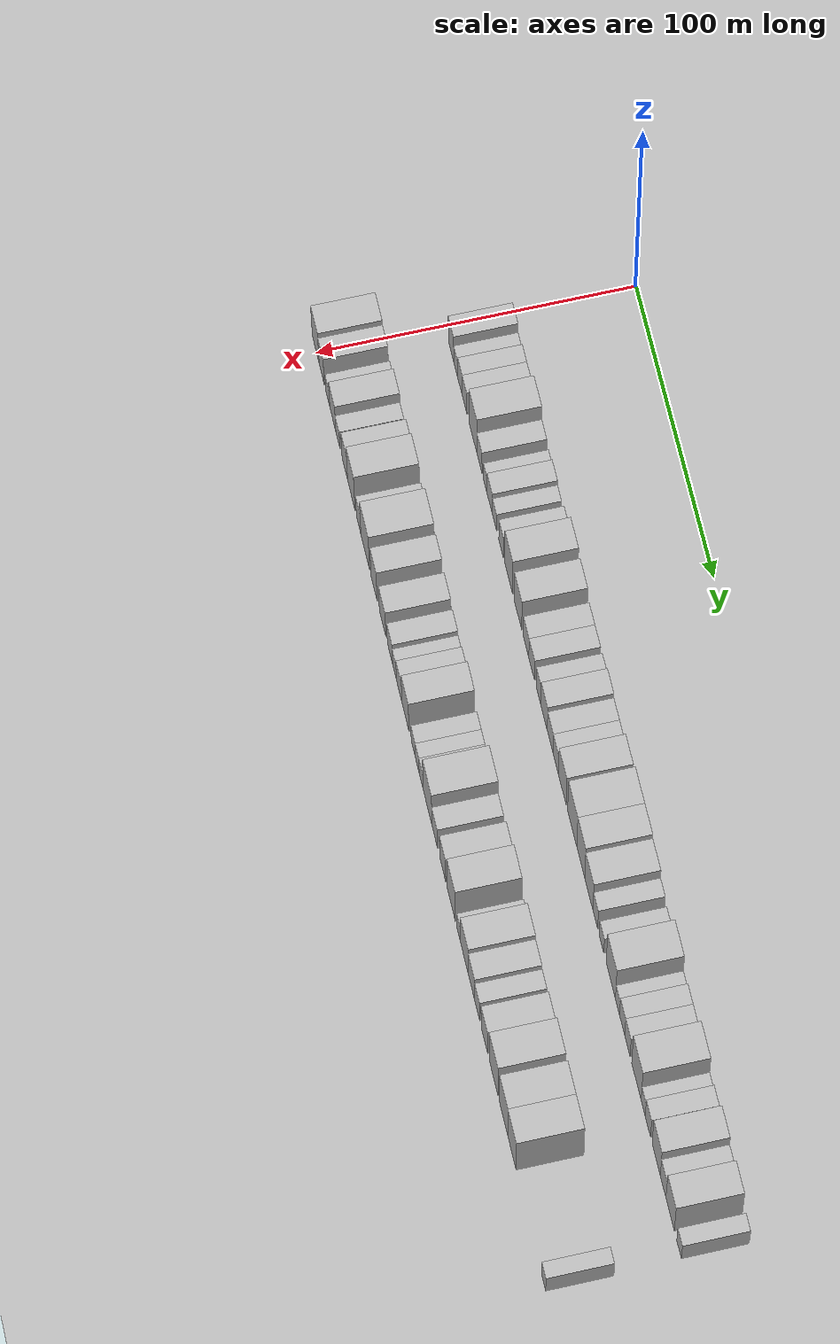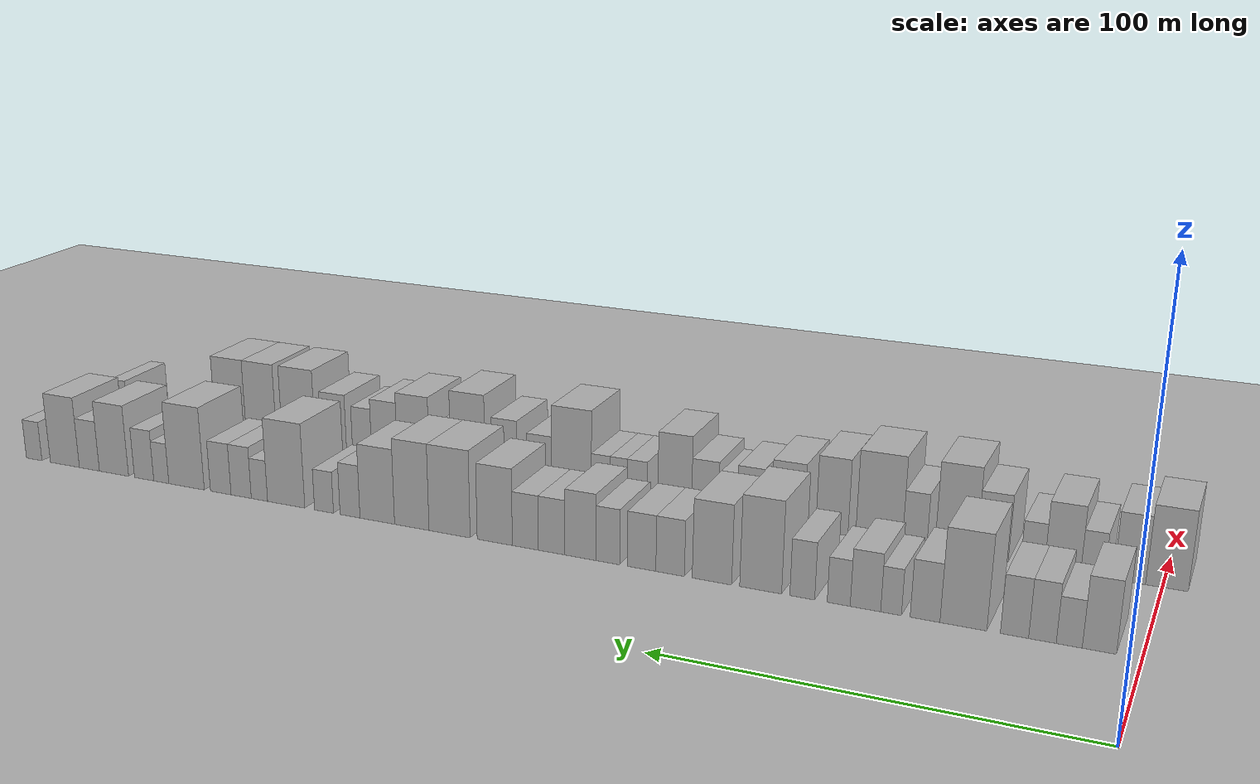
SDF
<sdf version="1.6">
 <world name="default">
  <include><name>ground_plane_1</name><uri>model://HANNAS_ground_plane</uri></include>
  <include>
   <name>ground_plane_2</name>
   <uri>model://HANNAS_ground_plane</uri>
   <pose>100 0 0  0 0 0</pose>
  </include>
  <model name="building_34">
   <static>1</static>
   <pose>50.0000 9.1386 0 0.000000 0.000000 0.000000</pose>
   <link name="link">
    <pose>0 0 9.00 0 0 0</pose>
    <collision name="collision"><geometry><box><size>20.0000 7.2633 18.0000</size></box></geometry></collision>
    <visual name="visual">
     <cast_shadows>0</cast_shadows>
     <geometry><box><size>20.0000 7.2633 18.0000</size></box></geometry>
     <material>
      <script>
       <uri>model://HANNAS_wall/materials/scripts</uri>
       <uri>model://HANNAS_wall/materials/textures</uri>
       <name>vrc/HANNAS_wall</name>
      </script>
     </material>
    </visual>
   </link>
  </model>
  <model name="building_35">
   <static>1</static>
   <pose>50.0000 15.5627 0 0.000000 0.000000 0.000000</pose>
   <link name="link">
    <pose>0 0 6.00 0 0 0</pose>
    <collision name="collision"><geometry><box><size>20.0000 5.5849 12.0000</size></box></geometry></collision>
    <visual name="visual">
     <cast_shadows>0</cast_shadows>
     <geometry><box><size>20.0000 5.5849 12.0000</size></box></geometry>
     <material>
      <script>
       <uri>model://HANNAS_wall/materials/scripts</uri>
       <uri>model://HANNAS_wall/materials/textures</uri>
       <name>vrc/HANNAS_wall</name>
      </script>
     </material>
    </visual>
   </link>
  </model>
  <model name="building_36">
   <static>1</static>
   <pose>50.0000 21.3634 0 0.000000 0.000000 0.000000</pose>
   <link name="link">
    <pose>0 0 7.50 0 0 0</pose>
    <collision name="collision"><geometry><box><size>20.0000 6.0165 15.0000</size></box></geometry></collision>
    <visual name="visual">
     <cast_shadows>0</cast_shadows>
     <geometry><box><size>20.0000 6.0165 15.0000</size></box></geometry>
     <material>
      <script>
       <uri>model://HANNAS_wall/materials/scripts</uri>
       <uri>model://HANNAS_wall/materials/textures</uri>
       <name>vrc/HANNAS_wall</name>
      </script>
     </material>
    </visual>
   </link>
  </model>
  <model name="building_37">
   <static>1</static>
   <pose>50.0000 27.4844 0 0.000000 0.000000 0.000000</pose>
   <link name="link">
    <pose>0 0 7.50 0 0 0</pose>
    <collision name="collision"><geometry><box><size>20.0000 6.2254 15.0000</size></box></geometry></collision>
    <visual name="visual">
     <cast_shadows>0</cast_shadows>
     <geometry><box><size>20.0000 6.2254 15.0000</size></box></geometry>
     <material>
      <script>
       <uri>model://HANNAS_wall/materials/scripts</uri>
       <uri>model://HANNAS_wall/materials/textures</uri>
       <name>vrc/HANNAS_wall</name>
      </script>
     </material>
    </visual>
   </link>
  </model>
  <model name="building_38">
   <static>1</static>
   <pose>50.0000 38.8776 0 0.000000 0.000000 0.000000</pose>
   <link name="link">
    <pose>0 0 12.00 0 0 0</pose>
    <collision name="collision"><geometry><box><size>20.0000 10.5609 24.0000</size></box></geometry></collision>
    <visual name="visual">
     <cast_shadows>0</cast_shadows>
     <geometry><box><size>20.0000 10.5609 24.0000</size></box></geometry>
     <material>
      <script>
       <uri>model://HANNAS_wall/materials/scripts</uri>
       <uri>model://HANNAS_wall/materials/textures</uri>
       <name>vrc/HANNAS_wall</name>
      </script>
     </material>
    </visual>
   </link>
  </model>
  <model name="building_39">
   <static>1</static>
   <pose>50.0000 47.5717 0 0.000000 0.000000 0.000000</pose>
   <link name="link">
    <pose>0 0 7.50 0 0 0</pose>
    <collision name="collision"><geometry><box><size>20.0000 6.8272 15.0000</size></box></geometry></collision>
    <visual name="visual">
     <cast_shadows>0</cast_shadows>
     <geometry><box><size>20.0000 6.8272 15.0000</size></box></geometry>
     <material>
      <script>
       <uri>model://HANNAS_wall/materials/scripts</uri>
       <uri>model://HANNAS_wall/materials/textures</uri>
       <name>vrc/HANNAS_wall</name>
      </script>
     </material>
    </visual>
   </link>
  </model>
  <model name="building_40">
   <static>1</static>
   <pose>50.0000 55.4066 0 0.000000 0.000000 0.000000</pose>
   <link name="link">
    <pose>0 0 6.00 0 0 0</pose>
    <collision name="collision"><geometry><box><size>20.0000 4.8426 12.0000</size></box></geometry></collision>
    <visual name="visual">
     <cast_shadows>0</cast_shadows>
     <geometry><box><size>20.0000 4.8426 12.0000</size></box></geometry>
     <material>
      <script>
       <uri>model://HANNAS_wall/materials/scripts</uri>
       <uri>model://HANNAS_wall/materials/textures</uri>
       <name>vrc/HANNAS_wall</name>
      </script>
     </material>
    </visual>
   </link>
  </model>
  <model name="building_41">
   <static>1</static>
   <pose>50.0000 61.4080 0 0.000000 0.000000 0.000000</pose>
   <link name="link">
    <pose>0 0 7.50 0 0 0</pose>
    <collision name="collision"><geometry><box><size>20.0000 7.1603 15.0000</size></box></geometry></collision>
    <visual name="visual">
     <cast_shadows>0</cast_shadows>
     <geometry><box><size>20.0000 7.1603 15.0000</size></box></geometry>
     <material>
      <script>
       <uri>model://HANNAS_wall/materials/scripts</uri>
       <uri>model://HANNAS_wall/materials/textures</uri>
       <name>vrc/HANNAS_wall</name>
      </script>
     </material>
    </visual>
   </link>
  </model>
  <model name="building_42">
   <static>1</static>
   <pose>50.0000 67.7312 0 0.000000 0.000000 0.000000</pose>
   <link name="link">
    <pose>0 0 6.00 0 0 0</pose>
    <collision name="collision"><geometry><box><size>20.0000 5.4860 12.0000</size></box></geometry></collision>
    <visual name="visual">
     <cast_shadows>0</cast_shadows>
     <geometry><box><size>20.0000 5.4860 12.0000</size></box></geometry>
     <material>
      <script>
       <uri>model://HANNAS_wall/materials/scripts</uri>
       <uri>model://HANNAS_wall/materials/textures</uri>
       <name>vrc/HANNAS_wall</name>
      </script>
     </material>
    </visual>
   </link>
  </model>
  <model name="building_43">
   <static>1</static>
   <pose>50.0000 76.4869 0 0.000000 0.000000 0.000000</pose>
   <link name="link">
    <pose>0 0 7.50 0 0 0</pose>
    <collision name="collision"><geometry><box><size>20.0000 6.0255 15.0000</size></box></geometry></collision>
    <visual name="visual">
     <cast_shadows>0</cast_shadows>
     <geometry><box><size>20.0000 6.0255 15.0000</size></box></geometry>
     <material>
      <script>
       <uri>model://HANNAS_wall/materials/scripts</uri>
       <uri>model://HANNAS_wall/materials/textures</uri>
       <name>vrc/HANNAS_wall</name>
      </script>
     </material>
    </visual>
   </link>
  </model>
  <model name="building_44">
   <static>1</static>
   <pose>50.0000 86.6789 0 0.000000 0.000000 0.000000</pose>
   <link name="link">
    <pose>0 0 12.00 0 0 0</pose>
    <collision name="collision"><geometry><box><size>20.0000 10.3585 24.0000</size></box></geometry></collision>
    <visual name="visual">
     <cast_shadows>0</cast_shadows>
     <geometry><box><size>20.0000 10.3585 24.0000</size></box></geometry>
     <material>
      <script>
       <uri>model://HANNAS_wall/materials/scripts</uri>
       <uri>model://HANNAS_wall/materials/textures</uri>
       <name>vrc/HANNAS_wall</name>
      </script>
     </material>
    </visual>
   </link>
  </model>
  <model name="building_45">
   <static>1</static>
   <pose>50.0000 98.8367 0 0.000000 0.000000 0.000000</pose>
   <link name="link">
    <pose>0 0 10.50 0 0 0</pose>
    <collision name="collision"><geometry><box><size>20.0000 9.9571 21.0000</size></box></geometry></collision>
    <visual name="visual">
     <cast_shadows>0</cast_shadows>
     <geometry><box><size>20.0000 9.9571 21.0000</size></box></geometry>
     <material>
      <script>
       <uri>model://HANNAS_wall/materials/scripts</uri>
       <uri>model://HANNAS_wall/materials/textures</uri>
       <name>vrc/HANNAS_wall</name>
      </script>
     </material>
    </visual>
   </link>
  </model>
  <model name="building_46">
   <static>1</static>
   <pose>50.0000 109.4958 0 0.000000 0.000000 0.000000</pose>
   <link name="link">
    <pose>0 0 7.50 0 0 0</pose>
    <collision name="collision"><geometry><box><size>20.0000 7.3610 15.0000</size></box></geometry></collision>
    <visual name="visual">
     <cast_shadows>0</cast_shadows>
     <geometry><box><size>20.0000 7.3610 15.0000</size></box></geometry>
     <material>
      <script>
       <uri>model://HANNAS_wall/materials/scripts</uri>
       <uri>model://HANNAS_wall/materials/textures</uri>
       <name>vrc/HANNAS_wall</name>
      </script>
     </material>
    </visual>
   </link>
  </model>
  <model name="building_47">
   <static>1</static>
   <pose>50.0000 116.9033 0 0.000000 0.000000 0.000000</pose>
   <link name="link">
    <pose>0 0 7.50 0 0 0</pose>
    <collision name="collision"><geometry><box><size>20.0000 7.4541 15.0000</size></box></geometry></collision>
    <visual name="visual">
     <cast_shadows>0</cast_shadows>
     <geometry><box><size>20.0000 7.4541 15.0000</size></box></geometry>
     <material>
      <script>
       <uri>model://HANNAS_wall/materials/scripts</uri>
       <uri>model://HANNAS_wall/materials/textures</uri>
       <name>vrc/HANNAS_wall</name>
      </script>
     </material>
    </visual>
   </link>
  </model>
  <model name="building_48">
   <static>1</static>
   <pose>50.0000 125.7696 0 0.000000 0.000000 0.000000</pose>
   <link name="link">
    <pose>0 0 7.50 0 0 0</pose>
    <collision name="collision"><geometry><box><size>20.0000 6.2784 15.0000</size></box></geometry></collision>
    <visual name="visual">
     <cast_shadows>0</cast_shadows>
     <geometry><box><size>20.0000 6.2784 15.0000</size></box></geometry>
     <material>
      <script>
       <uri>model://HANNAS_wall/materials/scripts</uri>
       <uri>model://HANNAS_wall/materials/textures</uri>
       <name>vrc/HANNAS_wall</name>
      </script>
     </material>
    </visual>
   </link>
  </model>
  <model name="building_49">
   <static>1</static>
   <pose>50.0000 133.0935 0 0.000000 0.000000 0.000000</pose>
   <link name="link">
    <pose>0 0 9.00 0 0 0</pose>
    <collision name="collision"><geometry><box><size>20.0000 8.3695 18.0000</size></box></geometry></collision>
    <visual name="visual">
     <cast_shadows>0</cast_shadows>
     <geometry><box><size>20.0000 8.3695 18.0000</size></box></geometry>
     <material>
      <script>
       <uri>model://HANNAS_wall/materials/scripts</uri>
       <uri>model://HANNAS_wall/materials/textures</uri>
       <name>vrc/HANNAS_wall</name>
      </script>
     </material>
    </visual>
   </link>
  </model>
  <model name="building_50">
   <static>1</static>
   <pose>50.0000 140.9272 0 0.000000 0.000000 0.000000</pose>
   <link name="link">
    <pose>0 0 7.50 0 0 0</pose>
    <collision name="collision"><geometry><box><size>20.0000 7.2979 15.0000</size></box></geometry></collision>
    <visual name="visual">
     <cast_shadows>0</cast_shadows>
     <geometry><box><size>20.0000 7.2979 15.0000</size></box></geometry>
     <material>
      <script>
       <uri>model://HANNAS_wall/materials/scripts</uri>
       <uri>model://HANNAS_wall/materials/textures</uri>
       <name>vrc/HANNAS_wall</name>
      </script>
     </material>
    </visual>
   </link>
  </model>
  <model name="building_51">
   <static>1</static>
   <pose>50.0000 148.1332 0 0.000000 0.000000 0.000000</pose>
   <link name="link">
    <pose>0 0 7.50 0 0 0</pose>
    <collision name="collision"><geometry><box><size>20.0000 7.1141 15.0000</size></box></geometry></collision>
    <visual name="visual">
     <cast_shadows>0</cast_shadows>
     <geometry><box><size>20.0000 7.1141 15.0000</size></box></geometry>
     <material>
      <script>
       <uri>model://HANNAS_wall/materials/scripts</uri>
       <uri>model://HANNAS_wall/materials/textures</uri>
       <name>vrc/HANNAS_wall</name>
      </script>
     </material>
    </visual>
   </link>
  </model>
  <model name="building_52">
   <static>1</static>
   <pose>50.0000 156.6143 0 0.000000 0.000000 0.000000</pose>
   <link name="link">
    <pose>0 0 10.50 0 0 0</pose>
    <collision name="collision"><geometry><box><size>20.0000 9.8481 21.0000</size></box></geometry></collision>
    <visual name="visual">
     <cast_shadows>0</cast_shadows>
     <geometry><box><size>20.0000 9.8481 21.0000</size></box></geometry>
     <material>
      <script>
       <uri>model://HANNAS_wall/materials/scripts</uri>
       <uri>model://HANNAS_wall/materials/textures</uri>
       <name>vrc/HANNAS_wall</name>
      </script>
     </material>
    </visual>
   </link>
  </model>
  <model name="building_53">
   <static>1</static>
   <pose>50.0000 169.4247 0 0.000000 0.000000 0.000000</pose>
   <link name="link">
    <pose>0 0 12.00 0 0 0</pose>
    <collision name="collision"><geometry><box><size>20.0000 11.7728 24.0000</size></box></geometry></collision>
    <visual name="visual">
     <cast_shadows>0</cast_shadows>
     <geometry><box><size>20.0000 11.7728 24.0000</size></box></geometry>
     <material>
      <script>
       <uri>model://HANNAS_wall/materials/scripts</uri>
       <uri>model://HANNAS_wall/materials/textures</uri>
       <name>vrc/HANNAS_wall</name>
      </script>
     </material>
    </visual>
   </link>
  </model>
  <model name="building_54">
   <static>1</static>
   <pose>50.0000 180.3538 0 0.000000 0.000000 0.000000</pose>
   <link name="link">
    <pose>0 0 12.00 0 0 0</pose>
    <collision name="collision"><geometry><box><size>20.0000 10.0854 24.0000</size></box></geometry></collision>
    <visual name="visual">
     <cast_shadows>0</cast_shadows>
     <geometry><box><size>20.0000 10.0854 24.0000</size></box></geometry>
     <material>
      <script>
       <uri>model://HANNAS_wall/materials/scripts</uri>
       <uri>model://HANNAS_wall/materials/textures</uri>
       <name>vrc/HANNAS_wall</name>
      </script>
     </material>
    </visual>
   </link>
  </model>
  <model name="building_55">
   <static>1</static>
   <pose>50.0000 190.5391 0 0.000000 0.000000 0.000000</pose>
   <link name="link">
    <pose>0 0 10.50 0 0 0</pose>
    <collision name="collision"><geometry><box><size>20.0000 10.2852 21.0000</size></box></geometry></collision>
    <visual name="visual">
     <cast_shadows>0</cast_shadows>
     <geometry><box><size>20.0000 10.2852 21.0000</size></box></geometry>
     <material>
      <script>
       <uri>model://HANNAS_wall/materials/scripts</uri>
       <uri>model://HANNAS_wall/materials/textures</uri>
       <name>vrc/HANNAS_wall</name>
      </script>
     </material>
    </visual>
   </link>
  </model>
  <model name="building_56">
   <static>1</static>
   <pose>50.0000 198.6832 0 0.000000 0.000000 0.000000</pose>
   <link name="link">
    <pose>0 0 7.50 0 0 0</pose>
    <collision name="collision"><geometry><box><size>20.0000 6.0030 15.0000</size></box></geometry></collision>
    <visual name="visual">
     <cast_shadows>0</cast_shadows>
     <geometry><box><size>20.0000 6.0030 15.0000</size></box></geometry>
     <material>
      <script>
       <uri>model://HANNAS_wall/materials/scripts</uri>
       <uri>model://HANNAS_wall/materials/textures</uri>
       <name>vrc/HANNAS_wall</name>
      </script>
     </material>
    </visual>
   </link>
  </model>
  <model name="building_57">
   <static>1</static>
   <pose>50.0000 206.5739 0 0.000000 0.000000 0.000000</pose>
   <link name="link">
    <pose>0 0 6.00 0 0 0</pose>
    <collision name="collision"><geometry><box><size>20.0000 5.7784 12.0000</size></box></geometry></collision>
    <visual name="visual">
     <cast_shadows>0</cast_shadows>
     <geometry><box><size>20.0000 5.7784 12.0000</size></box></geometry>
     <material>
      <script>
       <uri>model://HANNAS_wall/materials/scripts</uri>
       <uri>model://HANNAS_wall/materials/textures</uri>
       <name>vrc/HANNAS_wall</name>
      </script>
     </material>
    </visual>
   </link>
  </model>
  <model name="building_58">
   <static>1</static>
   <pose>50.0000 218.2641 0 0.000000 0.000000 0.000000</pose>
   <link name="link">
    <pose>0 0 12.00 0 0 0</pose>
    <collision name="collision"><geometry><box><size>20.0000 11.6019 24.0000</size></box></geometry></collision>
    <visual name="visual">
     <cast_shadows>0</cast_shadows>
     <geometry><box><size>20.0000 11.6019 24.0000</size></box></geometry>
     <material>
      <script>
       <uri>model://HANNAS_wall/materials/scripts</uri>
       <uri>model://HANNAS_wall/materials/textures</uri>
       <name>vrc/HANNAS_wall</name>
      </script>
     </material>
    </visual>
   </link>
  </model>
  <model name="building_59">
   <static>1</static>
   <pose>50.0000 226.6419 0 0.000000 0.000000 0.000000</pose>
   <link name="link">
    <pose>0 0 6.00 0 0 0</pose>
    <collision name="collision"><geometry><box><size>20.0000 5.1538 12.0000</size></box></geometry></collision>
    <visual name="visual">
     <cast_shadows>0</cast_shadows>
     <geometry><box><size>20.0000 5.1538 12.0000</size></box></geometry>
     <material>
      <script>
       <uri>model://HANNAS_wall/materials/scripts</uri>
       <uri>model://HANNAS_wall/materials/textures</uri>
       <name>vrc/HANNAS_wall</name>
      </script>
     </material>
    </visual>
   </link>
  </model>
  <model name="building_60">
   <static>1</static>
   <pose>50.0000 232.4467 0 0.000000 0.000000 0.000000</pose>
   <link name="link">
    <pose>0 0 7.50 0 0 0</pose>
    <collision name="collision"><geometry><box><size>20.0000 6.4557 15.0000</size></box></geometry></collision>
    <visual name="visual">
     <cast_shadows>0</cast_shadows>
     <geometry><box><size>20.0000 6.4557 15.0000</size></box></geometry>
     <material>
      <script>
       <uri>model://HANNAS_wall/materials/scripts</uri>
       <uri>model://HANNAS_wall/materials/textures</uri>
       <name>vrc/HANNAS_wall</name>
      </script>
     </material>
    </visual>
   </link>
  </model>
  <model name="building_61">
   <static>1</static>
   <pose>50.0000 238.9981 0 0.000000 0.000000 0.000000</pose>
   <link name="link">
    <pose>0 0 7.50 0 0 0</pose>
    <collision name="collision"><geometry><box><size>20.0000 6.6470 15.0000</size></box></geometry></collision>
    <visual name="visual">
     <cast_shadows>0</cast_shadows>
     <geometry><box><size>20.0000 6.6470 15.0000</size></box></geometry>
     <material>
      <script>
       <uri>model://HANNAS_wall/materials/scripts</uri>
       <uri>model://HANNAS_wall/materials/textures</uri>
       <name>vrc/HANNAS_wall</name>
      </script>
     </material>
    </visual>
   </link>
  </model>
  <model name="building_62">
   <static>1</static>
   <pose>50.0000 250.1455 0 0.000000 0.000000 0.000000</pose>
   <link name="link">
    <pose>0 0 12.00 0 0 0</pose>
    <collision name="collision"><geometry><box><size>20.0000 11.6477 24.0000</size></box></geometry></collision>
    <visual name="visual">
     <cast_shadows>0</cast_shadows>
     <geometry><box><size>20.0000 11.6477 24.0000</size></box></geometry>
     <material>
      <script>
       <uri>model://HANNAS_wall/materials/scripts</uri>
       <uri>model://HANNAS_wall/materials/textures</uri>
       <name>vrc/HANNAS_wall</name>
      </script>
     </material>
    </visual>
   </link>
  </model>
  <model name="building_63">
   <static>1</static>
   <pose>50.0000 258.4861 0 0.000000 0.000000 0.000000</pose>
   <link name="link">
    <pose>0 0 6.00 0 0 0</pose>
    <collision name="collision"><geometry><box><size>20.0000 5.0337 12.0000</size></box></geometry></collision>
    <visual name="visual">
     <cast_shadows>0</cast_shadows>
     <geometry><box><size>20.0000 5.0337 12.0000</size></box></geometry>
     <material>
      <script>
       <uri>model://HANNAS_wall/materials/scripts</uri>
       <uri>model://HANNAS_wall/materials/textures</uri>
       <name>vrc/HANNAS_wall</name>
      </script>
     </material>
    </visual>
   </link>
  </model>
  <model name="building_64">
   <static>1</static>
   <pose>50.0000 264.2400 0 0.000000 0.000000 0.000000</pose>
   <link name="link">
    <pose>0 0 7.50 0 0 0</pose>
    <collision name="collision"><geometry><box><size>20.0000 6.4740 15.0000</size></box></geometry></collision>
    <visual name="visual">
     <cast_shadows>0</cast_shadows>
     <geometry><box><size>20.0000 6.4740 15.0000</size></box></geometry>
     <material>
      <script>
       <uri>model://HANNAS_wall/materials/scripts</uri>
       <uri>model://HANNAS_wall/materials/textures</uri>
       <name>vrc/HANNAS_wall</name>
      </script>
     </material>
    </visual>
   </link>
  </model>
  <model name="building_65">
   <static>1</static>
   <pose>50.0000 274.4589 0 0.000000 0.000000 0.000000</pose>
   <link name="link">
    <pose>0 0 10.50 0 0 0</pose>
    <collision name="collision"><geometry><box><size>20.0000 9.9638 21.0000</size></box></geometry></collision>
    <visual name="visual">
     <cast_shadows>0</cast_shadows>
     <geometry><box><size>20.0000 9.9638 21.0000</size></box></geometry>
     <material>
      <script>
       <uri>model://HANNAS_wall/materials/scripts</uri>
       <uri>model://HANNAS_wall/materials/textures</uri>
       <name>vrc/HANNAS_wall</name>
      </script>
     </material>
    </visual>
   </link>
  </model>
  <model name="building_66">
   <static>1</static>
   <pose>50.0000 282.9145 0 0.000000 0.000000 0.000000</pose>
   <link name="link">
    <pose>0 0 7.50 0 0 0</pose>
    <collision name="collision"><geometry><box><size>20.0000 6.9473 15.0000</size></box></geometry></collision>
    <visual name="visual">
     <cast_shadows>0</cast_shadows>
     <geometry><box><size>20.0000 6.9473 15.0000</size></box></geometry>
     <material>
      <script>
       <uri>model://HANNAS_wall/materials/scripts</uri>
       <uri>model://HANNAS_wall/materials/textures</uri>
       <name>vrc/HANNAS_wall</name>
      </script>
     </material>
    </visual>
   </link>
  </model>
  <model name="building_67">
   <static>1</static>
   <pose>50.0000 291.4581 0 0.000000 0.000000 0.000000</pose>
   <link name="link">
    <pose>0 0 10.50 0 0 0</pose>
    <collision name="collision"><geometry><box><size>20.0000 10.1399 21.0000</size></box></geometry></collision>
    <visual name="visual">
     <cast_shadows>0</cast_shadows>
     <geometry><box><size>20.0000 10.1399 21.0000</size></box></geometry>
     <material>
      <script>
       <uri>model://HANNAS_wall/materials/scripts</uri>
       <uri>model://HANNAS_wall/materials/textures</uri>
       <name>vrc/HANNAS_wall</name>
      </script>
     </material>
    </visual>
   </link>
  </model>
  <model name="building_68">
   <static>1</static>
   <pose>50.0000 302.2902 0 0.000000 0.000000 0.000000</pose>
   <link name="link">
    <pose>0 0 6.00 0 0 0</pose>
    <collision name="collision"><geometry><box><size>20.0000 5.5241 12.0000</size></box></geometry></collision>
    <visual name="visual">
     <cast_shadows>0</cast_shadows>
     <geometry><box><size>20.0000 5.5241 12.0000</size></box></geometry>
     <material>
      <script>
       <uri>model://HANNAS_wall/materials/scripts</uri>
       <uri>model://HANNAS_wall/materials/textures</uri>
       <name>vrc/HANNAS_wall</name>
      </script>
     </material>
    </visual>
   </link>
  </model>
  <model name="building_102">
   <static>1</static>
   <pose>90.0000 -0.8853 0 0.000000 0.000000 0.000000</pose>
   <link name="link">
    <pose>0 0 10.50 0 0 0</pose>
    <collision name="collision"><geometry><box><size>20.0000 9.6787 21.0000</size></box></geometry></collision>
    <visual name="visual">
     <cast_shadows>0</cast_shadows>
     <geometry><box><size>20.0000 9.6787 21.0000</size></box></geometry>
     <material>
      <script>
       <uri>model://HANNAS_wall/materials/scripts</uri>
       <uri>model://HANNAS_wall/materials/textures</uri>
       <name>vrc/HANNAS_wall</name>
      </script>
     </material>
    </visual>
   </link>
  </model>
  <model name="building_103">
   <static>1</static>
   <pose>90.0000 7.6519 0 0.000000 0.000000 0.000000</pose>
   <link name="link">
    <pose>0 0 9.00 0 0 0</pose>
    <collision name="collision"><geometry><box><size>20.0000 7.3957 18.0000</size></box></geometry></collision>
    <visual name="visual">
     <cast_shadows>0</cast_shadows>
     <geometry><box><size>20.0000 7.3957 18.0000</size></box></geometry>
     <material>
      <script>
       <uri>model://HANNAS_wall/materials/scripts</uri>
       <uri>model://HANNAS_wall/materials/textures</uri>
       <name>vrc/HANNAS_wall</name>
      </script>
     </material>
    </visual>
   </link>
  </model>
  <model name="building_104">
   <static>1</static>
   <pose>90.0000 16.1765 0 0.000000 0.000000 0.000000</pose>
   <link name="link">
    <pose>0 0 6.00 0 0 0</pose>
    <collision name="collision"><geometry><box><size>20.0000 5.6537 12.0000</size></box></geometry></collision>
    <visual name="visual">
     <cast_shadows>0</cast_shadows>
     <geometry><box><size>20.0000 5.6537 12.0000</size></box></geometry>
     <material>
      <script>
       <uri>model://HANNAS_wall/materials/scripts</uri>
       <uri>model://HANNAS_wall/materials/textures</uri>
       <name>vrc/HANNAS_wall</name>
      </script>
     </material>
    </visual>
   </link>
  </model>
  <model name="building_105">
   <static>1</static>
   <pose>90.0000 23.2852 0 0.000000 0.000000 0.000000</pose>
   <link name="link">
    <pose>0 0 9.00 0 0 0</pose>
    <collision name="collision"><geometry><box><size>20.0000 8.5636 18.0000</size></box></geometry></collision>
    <visual name="visual">
     <cast_shadows>0</cast_shadows>
     <geometry><box><size>20.0000 8.5636 18.0000</size></box></geometry>
     <material>
      <script>
       <uri>model://HANNAS_wall/materials/scripts</uri>
       <uri>model://HANNAS_wall/materials/textures</uri>
       <name>vrc/HANNAS_wall</name>
      </script>
     </material>
    </visual>
   </link>
  </model>
  <model name="building_106">
   <static>1</static>
   <pose>90.0000 30.4156 0 0.000000 0.000000 0.000000</pose>
   <link name="link">
    <pose>0 0 6.00 0 0 0</pose>
    <collision name="collision"><geometry><box><size>20.0000 5.6973 12.0000</size></box></geometry></collision>
    <visual name="visual">
     <cast_shadows>0</cast_shadows>
     <geometry><box><size>20.0000 5.6973 12.0000</size></box></geometry>
     <material>
      <script>
       <uri>model://HANNAS_wall/materials/scripts</uri>
       <uri>model://HANNAS_wall/materials/textures</uri>
       <name>vrc/HANNAS_wall</name>
      </script>
     </material>
    </visual>
   </link>
  </model>
  <model name="building_107">
   <static>1</static>
   <pose>90.0000 40.1445 0 0.000000 0.000000 0.000000</pose>
   <link name="link">
    <pose>0 0 9.00 0 0 0</pose>
    <collision name="collision"><geometry><box><size>20.0000 7.7603 18.0000</size></box></geometry></collision>
    <visual name="visual">
     <cast_shadows>0</cast_shadows>
     <geometry><box><size>20.0000 7.7603 18.0000</size></box></geometry>
     <material>
      <script>
       <uri>model://HANNAS_wall/materials/scripts</uri>
       <uri>model://HANNAS_wall/materials/textures</uri>
       <name>vrc/HANNAS_wall</name>
      </script>
     </material>
    </visual>
   </link>
  </model>
  <model name="building_108">
   <static>1</static>
   <pose>90.0000 49.1941 0 0.000000 0.000000 0.000000</pose>
   <link name="link">
    <pose>0 0 12.00 0 0 0</pose>
    <collision name="collision"><geometry><box><size>20.0000 10.3390 24.0000</size></box></geometry></collision>
    <visual name="visual">
     <cast_shadows>0</cast_shadows>
     <geometry><box><size>20.0000 10.3390 24.0000</size></box></geometry>
     <material>
      <script>
       <uri>model://HANNAS_wall/materials/scripts</uri>
       <uri>model://HANNAS_wall/materials/textures</uri>
       <name>vrc/HANNAS_wall</name>
      </script>
     </material>
    </visual>
   </link>
  </model>
  <model name="building_109">
   <static>1</static>
   <pose>90.0000 59.4452 0 0.000000 0.000000 0.000000</pose>
   <link name="link">
    <pose>0 0 7.50 0 0 0</pose>
    <collision name="collision"><geometry><box><size>20.0000 6.1631 15.0000</size></box></geometry></collision>
    <visual name="visual">
     <cast_shadows>0</cast_shadows>
     <geometry><box><size>20.0000 6.1631 15.0000</size></box></geometry>
     <material>
      <script>
       <uri>model://HANNAS_wall/materials/scripts</uri>
       <uri>model://HANNAS_wall/materials/textures</uri>
       <name>vrc/HANNAS_wall</name>
      </script>
     </material>
    </visual>
   </link>
  </model>
  <model name="building_110">
   <static>1</static>
   <pose>90.0000 68.5207 0 0.000000 0.000000 0.000000</pose>
   <link name="link">
    <pose>0 0 12.00 0 0 0</pose>
    <collision name="collision"><geometry><box><size>20.0000 11.9879 24.0000</size></box></geometry></collision>
    <visual name="visual">
     <cast_shadows>0</cast_shadows>
     <geometry><box><size>20.0000 11.9879 24.0000</size></box></geometry>
     <material>
      <script>
       <uri>model://HANNAS_wall/materials/scripts</uri>
       <uri>model://HANNAS_wall/materials/textures</uri>
       <name>vrc/HANNAS_wall</name>
      </script>
     </material>
    </visual>
   </link>
  </model>
  <model name="building_111">
   <static>1</static>
   <pose>90.0000 80.7420 0 0.000000 0.000000 0.000000</pose>
   <link name="link">
    <pose>0 0 10.50 0 0 0</pose>
    <collision name="collision"><geometry><box><size>20.0000 8.4547 21.0000</size></box></geometry></collision>
    <visual name="visual">
     <cast_shadows>0</cast_shadows>
     <geometry><box><size>20.0000 8.4547 21.0000</size></box></geometry>
     <material>
      <script>
       <uri>model://HANNAS_wall/materials/scripts</uri>
       <uri>model://HANNAS_wall/materials/textures</uri>
       <name>vrc/HANNAS_wall</name>
      </script>
     </material>
    </visual>
   </link>
  </model>
  <model name="building_112">
   <static>1</static>
   <pose>90.0000 92.4219 0 0.000000 0.000000 0.000000</pose>
   <link name="link">
    <pose>0 0 9.00 0 0 0</pose>
    <collision name="collision"><geometry><box><size>20.0000 8.9053 18.0000</size></box></geometry></collision>
    <visual name="visual">
     <cast_shadows>0</cast_shadows>
     <geometry><box><size>20.0000 8.9053 18.0000</size></box></geometry>
     <material>
      <script>
       <uri>model://HANNAS_wall/materials/scripts</uri>
       <uri>model://HANNAS_wall/materials/textures</uri>
       <name>vrc/HANNAS_wall</name>
      </script>
     </material>
    </visual>
   </link>
  </model>
  <model name="building_113">
   <static>1</static>
   <pose>90.0000 102.4912 0 0.000000 0.000000 0.000000</pose>
   <link name="link">
    <pose>0 0 7.50 0 0 0</pose>
    <collision name="collision"><geometry><box><size>20.0000 7.2332 15.0000</size></box></geometry></collision>
    <visual name="visual">
     <cast_shadows>0</cast_shadows>
     <geometry><box><size>20.0000 7.2332 15.0000</size></box></geometry>
     <material>
      <script>
       <uri>model://HANNAS_wall/materials/scripts</uri>
       <uri>model://HANNAS_wall/materials/textures</uri>
       <name>vrc/HANNAS_wall</name>
      </script>
     </material>
    </visual>
   </link>
  </model>
  <model name="building_114">
   <static>1</static>
   <pose>90.0000 108.6822 0 0.000000 0.000000 0.000000</pose>
   <link name="link">
    <pose>0 0 6.00 0 0 0</pose>
    <collision name="collision"><geometry><box><size>20.0000 5.1489 12.0000</size></box></geometry></collision>
    <visual name="visual">
     <cast_shadows>0</cast_shadows>
     <geometry><box><size>20.0000 5.1489 12.0000</size></box></geometry>
     <material>
      <script>
       <uri>model://HANNAS_wall/materials/scripts</uri>
       <uri>model://HANNAS_wall/materials/textures</uri>
       <name>vrc/HANNAS_wall</name>
      </script>
     </material>
    </visual>
   </link>
  </model>
  <model name="building_115">
   <static>1</static>
   <pose>90.0000 114.9995 0 0.000000 0.000000 0.000000</pose>
   <link name="link">
    <pose>0 0 7.50 0 0 0</pose>
    <collision name="collision"><geometry><box><size>20.0000 7.4856 15.0000</size></box></geometry></collision>
    <visual name="visual">
     <cast_shadows>0</cast_shadows>
     <geometry><box><size>20.0000 7.4856 15.0000</size></box></geometry>
     <material>
      <script>
       <uri>model://HANNAS_wall/materials/scripts</uri>
       <uri>model://HANNAS_wall/materials/textures</uri>
       <name>vrc/HANNAS_wall</name>
      </script>
     </material>
    </visual>
   </link>
  </model>
  <model name="building_116">
   <static>1</static>
   <pose>90.0000 123.5040 0 0.000000 0.000000 0.000000</pose>
   <link name="link">
    <pose>0 0 10.50 0 0 0</pose>
    <collision name="collision"><geometry><box><size>20.0000 9.5235 21.0000</size></box></geometry></collision>
    <visual name="visual">
     <cast_shadows>0</cast_shadows>
     <geometry><box><size>20.0000 9.5235 21.0000</size></box></geometry>
     <material>
      <script>
       <uri>model://HANNAS_wall/materials/scripts</uri>
       <uri>model://HANNAS_wall/materials/textures</uri>
       <name>vrc/HANNAS_wall</name>
      </script>
     </material>
    </visual>
   </link>
  </model>
  <model name="building_117">
   <static>1</static>
   <pose>90.0000 134.1806 0 0.000000 0.000000 0.000000</pose>
   <link name="link">
    <pose>0 0 6.00 0 0 0</pose>
    <collision name="collision"><geometry><box><size>20.0000 5.8296 12.0000</size></box></geometry></collision>
    <visual name="visual">
     <cast_shadows>0</cast_shadows>
     <geometry><box><size>20.0000 5.8296 12.0000</size></box></geometry>
     <material>
      <script>
       <uri>model://HANNAS_wall/materials/scripts</uri>
       <uri>model://HANNAS_wall/materials/textures</uri>
       <name>vrc/HANNAS_wall</name>
      </script>
     </material>
    </visual>
   </link>
  </model>
  <model name="building_118">
   <static>1</static>
   <pose>90.0000 139.5247 0 0.000000 0.000000 0.000000</pose>
   <link name="link">
    <pose>0 0 6.00 0 0 0</pose>
    <collision name="collision"><geometry><box><size>20.0000 4.8585 12.0000</size></box></geometry></collision>
    <visual name="visual">
     <cast_shadows>0</cast_shadows>
     <geometry><box><size>20.0000 4.8585 12.0000</size></box></geometry>
     <material>
      <script>
       <uri>model://HANNAS_wall/materials/scripts</uri>
       <uri>model://HANNAS_wall/materials/textures</uri>
       <name>vrc/HANNAS_wall</name>
      </script>
     </material>
    </visual>
   </link>
  </model>
  <model name="building_119">
   <static>1</static>
   <pose>90.0000 144.6841 0 0.000000 0.000000 0.000000</pose>
   <link name="link">
    <pose>0 0 6.00 0 0 0</pose>
    <collision name="collision"><geometry><box><size>20.0000 5.4603 12.0000</size></box></geometry></collision>
    <visual name="visual">
     <cast_shadows>0</cast_shadows>
     <geometry><box><size>20.0000 5.4603 12.0000</size></box></geometry>
     <material>
      <script>
       <uri>model://HANNAS_wall/materials/scripts</uri>
       <uri>model://HANNAS_wall/materials/textures</uri>
       <name>vrc/HANNAS_wall</name>
      </script>
     </material>
    </visual>
   </link>
  </model>
  <model name="building_120">
   <static>1</static>
   <pose>90.0000 153.2715 0 0.000000 0.000000 0.000000</pose>
   <link name="link">
    <pose>0 0 12.00 0 0 0</pose>
    <collision name="collision"><geometry><box><size>20.0000 11.7147 24.0000</size></box></geometry></collision>
    <visual name="visual">
     <cast_shadows>0</cast_shadows>
     <geometry><box><size>20.0000 11.7147 24.0000</size></box></geometry>
     <material>
      <script>
       <uri>model://HANNAS_wall/materials/scripts</uri>
       <uri>model://HANNAS_wall/materials/textures</uri>
       <name>vrc/HANNAS_wall</name>
      </script>
     </material>
    </visual>
   </link>
  </model>
  <model name="building_121">
   <static>1</static>
   <pose>90.0000 162.8069 0 0.000000 0.000000 0.000000</pose>
   <link name="link">
    <pose>0 0 7.50 0 0 0</pose>
    <collision name="collision"><geometry><box><size>20.0000 7.3560 15.0000</size></box></geometry></collision>
    <visual name="visual">
     <cast_shadows>0</cast_shadows>
     <geometry><box><size>20.0000 7.3560 15.0000</size></box></geometry>
     <material>
      <script>
       <uri>model://HANNAS_wall/materials/scripts</uri>
       <uri>model://HANNAS_wall/materials/textures</uri>
       <name>vrc/HANNAS_wall</name>
      </script>
     </material>
    </visual>
   </link>
  </model>
  <model name="building_122">
   <static>1</static>
   <pose>90.0000 173.4155 0 0.000000 0.000000 0.000000</pose>
   <link name="link">
    <pose>0 0 9.00 0 0 0</pose>
    <collision name="collision"><geometry><box><size>20.0000 7.8612 18.0000</size></box></geometry></collision>
    <visual name="visual">
     <cast_shadows>0</cast_shadows>
     <geometry><box><size>20.0000 7.8612 18.0000</size></box></geometry>
     <material>
      <script>
       <uri>model://HANNAS_wall/materials/scripts</uri>
       <uri>model://HANNAS_wall/materials/textures</uri>
       <name>vrc/HANNAS_wall</name>
      </script>
     </material>
    </visual>
   </link>
  </model>
  <model name="building_123">
   <static>1</static>
   <pose>90.0000 184.6946 0 0.000000 0.000000 0.000000</pose>
   <link name="link">
    <pose>0 0 12.00 0 0 0</pose>
    <collision name="collision"><geometry><box><size>20.0000 10.6971 24.0000</size></box></geometry></collision>
    <visual name="visual">
     <cast_shadows>0</cast_shadows>
     <geometry><box><size>20.0000 10.6971 24.0000</size></box></geometry>
     <material>
      <script>
       <uri>model://HANNAS_wall/materials/scripts</uri>
       <uri>model://HANNAS_wall/materials/textures</uri>
       <name>vrc/HANNAS_wall</name>
      </script>
     </material>
    </visual>
   </link>
  </model>
  <model name="building_124">
   <static>1</static>
   <pose>90.0000 194.4460 0 0.000000 0.000000 0.000000</pose>
   <link name="link">
    <pose>0 0 6.00 0 0 0</pose>
    <collision name="collision"><geometry><box><size>20.0000 4.8055 12.0000</size></box></geometry></collision>
    <visual name="visual">
     <cast_shadows>0</cast_shadows>
     <geometry><box><size>20.0000 4.8055 12.0000</size></box></geometry>
     <material>
      <script>
       <uri>model://HANNAS_wall/materials/scripts</uri>
       <uri>model://HANNAS_wall/materials/textures</uri>
       <name>vrc/HANNAS_wall</name>
      </script>
     </material>
    </visual>
   </link>
  </model>
  <model name="building_125">
   <static>1</static>
   <pose>90.0000 201.9642 0 0.000000 0.000000 0.000000</pose>
   <link name="link">
    <pose>0 0 10.50 0 0 0</pose>
    <collision name="collision"><geometry><box><size>20.0000 10.2309 21.0000</size></box></geometry></collision>
    <visual name="visual">
     <cast_shadows>0</cast_shadows>
     <geometry><box><size>20.0000 10.2309 21.0000</size></box></geometry>
     <material>
      <script>
       <uri>model://HANNAS_wall/materials/scripts</uri>
       <uri>model://HANNAS_wall/materials/textures</uri>
       <name>vrc/HANNAS_wall</name>
      </script>
     </material>
    </visual>
   </link>
  </model>
  <model name="building_126">
   <static>1</static>
   <pose>90.0000 211.2435 0 0.000000 0.000000 0.000000</pose>
   <link name="link">
    <pose>0 0 9.00 0 0 0</pose>
    <collision name="collision"><geometry><box><size>20.0000 8.3277 18.0000</size></box></geometry></collision>
    <visual name="visual">
     <cast_shadows>0</cast_shadows>
     <geometry><box><size>20.0000 8.3277 18.0000</size></box></geometry>
     <material>
      <script>
       <uri>model://HANNAS_wall/materials/scripts</uri>
       <uri>model://HANNAS_wall/materials/textures</uri>
       <name>vrc/HANNAS_wall</name>
      </script>
     </material>
    </visual>
   </link>
  </model>
  <model name="building_127">
   <static>1</static>
   <pose>90.0000 218.5343 0 0.000000 0.000000 0.000000</pose>
   <link name="link">
    <pose>0 0 7.50 0 0 0</pose>
    <collision name="collision"><geometry><box><size>20.0000 6.2540 15.0000</size></box></geometry></collision>
    <visual name="visual">
     <cast_shadows>0</cast_shadows>
     <geometry><box><size>20.0000 6.2540 15.0000</size></box></geometry>
     <material>
      <script>
       <uri>model://HANNAS_wall/materials/scripts</uri>
       <uri>model://HANNAS_wall/materials/textures</uri>
       <name>vrc/HANNAS_wall</name>
      </script>
     </material>
    </visual>
   </link>
  </model>
  <model name="building_128">
   <static>1</static>
   <pose>90.0000 227.8485 0 0.000000 0.000000 0.000000</pose>
   <link name="link">
    <pose>0 0 9.00 0 0 0</pose>
    <collision name="collision"><geometry><box><size>20.0000 8.3744 18.0000</size></box></geometry></collision>
    <visual name="visual">
     <cast_shadows>0</cast_shadows>
     <geometry><box><size>20.0000 8.3744 18.0000</size></box></geometry>
     <material>
      <script>
       <uri>model://HANNAS_wall/materials/scripts</uri>
       <uri>model://HANNAS_wall/materials/textures</uri>
       <name>vrc/HANNAS_wall</name>
      </script>
     </material>
    </visual>
   </link>
  </model>
  <model name="building_129">
   <static>1</static>
   <pose>90.0000 239.6650 0 0.000000 0.000000 0.000000</pose>
   <link name="link">
    <pose>0 0 12.00 0 0 0</pose>
    <collision name="collision"><geometry><box><size>20.0000 11.2587 24.0000</size></box></geometry></collision>
    <visual name="visual">
     <cast_shadows>0</cast_shadows>
     <geometry><box><size>20.0000 11.2587 24.0000</size></box></geometry>
     <material>
      <script>
       <uri>model://HANNAS_wall/materials/scripts</uri>
       <uri>model://HANNAS_wall/materials/textures</uri>
       <name>vrc/HANNAS_wall</name>
      </script>
     </material>
    </visual>
   </link>
  </model>
  <model name="building_130">
   <static>1</static>
   <pose>90.0000 252.5311 0 0.000000 0.000000 0.000000</pose>
   <link name="link">
    <pose>0 0 12.00 0 0 0</pose>
    <collision name="collision"><geometry><box><size>20.0000 10.4734 24.0000</size></box></geometry></collision>
    <visual name="visual">
     <cast_shadows>0</cast_shadows>
     <geometry><box><size>20.0000 10.4734 24.0000</size></box></geometry>
     <material>
      <script>
       <uri>model://HANNAS_wall/materials/scripts</uri>
       <uri>model://HANNAS_wall/materials/textures</uri>
       <name>vrc/HANNAS_wall</name>
      </script>
     </material>
    </visual>
   </link>
  </model>
  <model name="building_131">
   <static>1</static>
   <pose>90.0000 263.1201 0 0.000000 0.000000 0.000000</pose>
   <link name="link">
    <pose>0 0 12.00 0 0 0</pose>
    <collision name="collision"><geometry><box><size>20.0000 10.7046 24.0000</size></box></geometry></collision>
    <visual name="visual">
     <cast_shadows>0</cast_shadows>
     <geometry><box><size>20.0000 10.7046 24.0000</size></box></geometry>
     <material>
      <script>
       <uri>model://HANNAS_wall/materials/scripts</uri>
       <uri>model://HANNAS_wall/materials/textures</uri>
       <name>vrc/HANNAS_wall</name>
      </script>
     </material>
    </visual>
   </link>
  </model>
  <model name="building_132">
   <static>1</static>
   <pose>90.0000 303.1523 0 0.000000 0.000000 0.000000</pose>
   <link name="link">
    <pose>0 0 6.00 0 0 0</pose>
    <collision name="collision"><geometry><box><size>20.0000 5.1199 12.0000</size></box></geometry></collision>
    <visual name="visual">
     <cast_shadows>0</cast_shadows>
     <geometry><box><size>20.0000 5.1199 12.0000</size></box></geometry>
     <material>
      <script>
       <uri>model://HANNAS_wall/materials/scripts</uri>
       <uri>model://HANNAS_wall/materials/textures</uri>
       <name>vrc/HANNAS_wall</name>
      </script>
     </material>
    </visual>
   </link>
  </model>
 </world>
</sdf>
